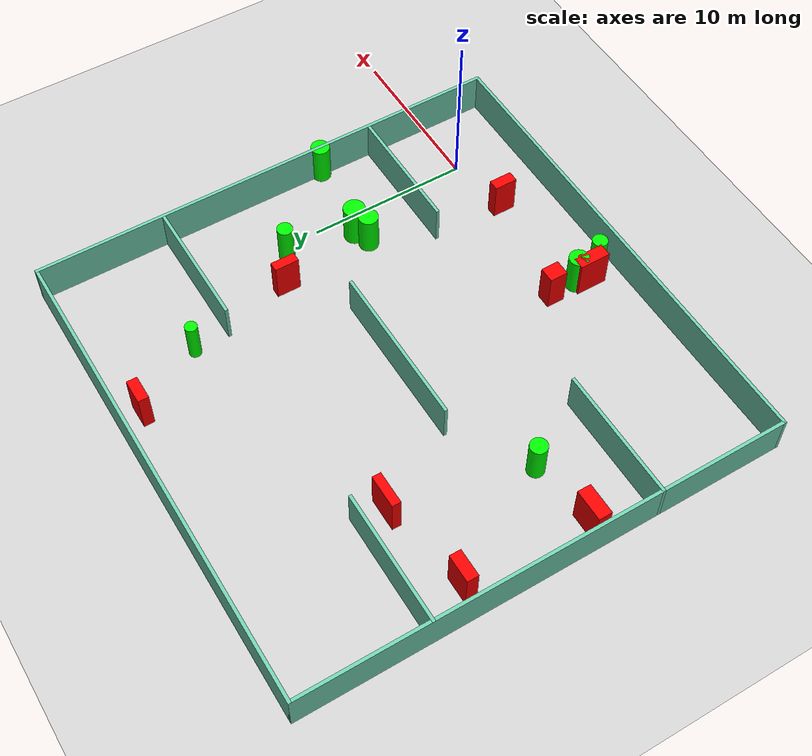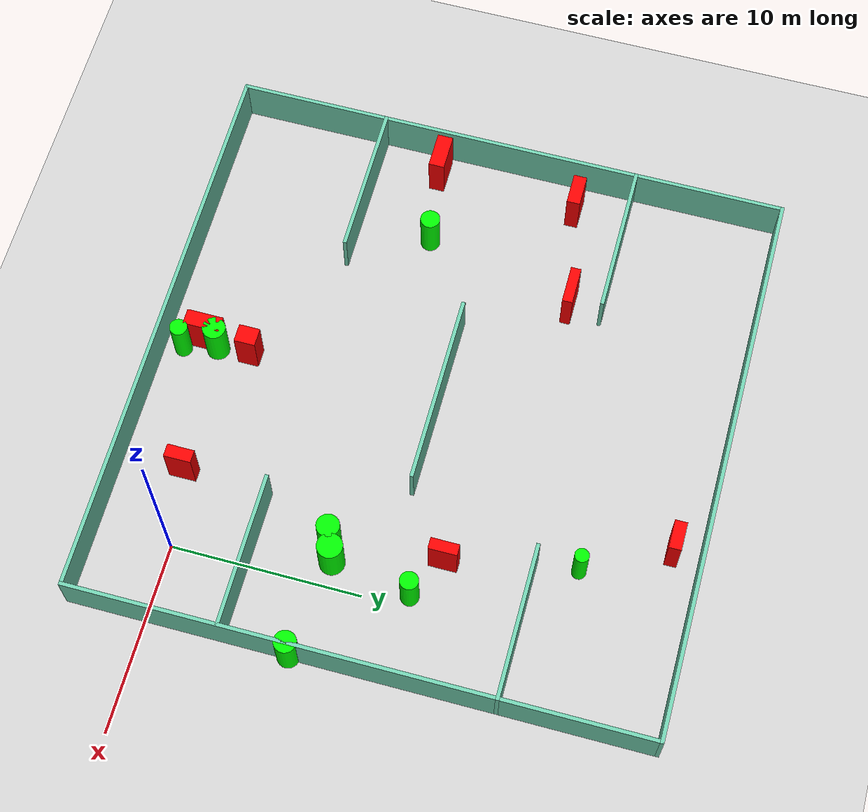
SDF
<sdf version="1.7">
 <world name="default">
  <light name="sun" type="directional">
   <pose>0 0 10 0 -0 0</pose>
   <diffuse>0.8 0.8 0.8 1</diffuse>
   <specular>0.2 0.2 0.2 1</specular>
   <attenuation>
    <range>1000</range>
    <constant>0.9</constant>
    <linear>0.01</linear>
    <quadratic>0.001</quadratic>
   </attenuation>
   <direction>-0.5 0.1 -0.9</direction>
   <spot><inner_angle>0</inner_angle><outer_angle>0</outer_angle><falloff>0</falloff></spot>
  </light>
  <model name="ground_plane">
   <static>1</static>
   <link name="link">
    <collision name="collision">
     <geometry><plane><normal>0 0 1</normal><size>100 100</size></plane></geometry>
     <surface>
      <contact><collide_bitmask>65535</collide_bitmask></contact>
      <friction><ode><mu>100</mu><mu2>50</mu2></ode></friction>
     </surface>
    </collision>
    <visual name="visual">
     <cast_shadows>0</cast_shadows>
     <geometry><plane><normal>0 0 1</normal><size>100 100</size></plane></geometry>
     <material>
      <script><uri>file://media/materials/scripts/gazebo.material</uri><name>Gazebo/Grey</name></script>
     </material>
    </visual>
   </link>
  </model>
  <gravity>0 0 -9.8</gravity>
  <magnetic_field>6e-06 2.3e-05 -4.2e-05</magnetic_field>
  <atmosphere type="adiabatic"/>
  <physics type="ode">
   <max_step_size>0.001</max_step_size>
   <real_time_factor>1</real_time_factor>
   <real_time_update_rate>1000</real_time_update_rate>
  </physics>
  <scene><ambient>0.4 0.4 0.4 1</ambient><background>0.7 0.7 0.7 1</background><shadows>1</shadows></scene>
  <spherical_coordinates>
   <surface_model>EARTH_WGS84</surface_model>
   <latitude_deg>0</latitude_deg>
   <longitude_deg>0</longitude_deg>
   <elevation>0</elevation>
   <heading_deg>0</heading_deg>
  </spherical_coordinates>
  <model name="my_base_walls">
   <link name="Wall_10">
    <collision name="Wall_10_Collision">
     <geometry><box><size>8.2 0.2 2.5</size></box></geometry>
     <pose>0 0 1.25 0 -0 0</pose>
    </collision>
    <visual name="Wall_10_Visual">
     <pose>0 0 1.25 0 -0 0</pose>
     <geometry><box><size>8.2 0.2 2.5</size></box></geometry>
     <material>
      <script><uri>file://media/materials/scripts/gazebo.material</uri><name>Gazebo/Grey</name></script>
      <ambient>0.435294 0.796078 0.67451 1</ambient>
     </material>
     <meta><layer>0</layer></meta>
    </visual>
    <pose>-11 -7 0 0 -0 0</pose>
   </link>
   <link name="Wall_12">
    <collision name="Wall_12_Collision">
     <geometry><box><size>8.2 0.2 2.5</size></box></geometry>
     <pose>0 0 1.25 0 -0 0</pose>
    </collision>
    <visual name="Wall_12_Visual">
     <pose>0 0 1.25 0 -0 0</pose>
     <geometry><box><size>8.2 0.2 2.5</size></box></geometry>
     <material>
      <script><uri>file://media/materials/scripts/gazebo.material</uri><name>Gazebo/Grey</name></script>
      <ambient>0.435294 0.796078 0.67451 1</ambient>
     </material>
     <meta><layer>0</layer></meta>
    </visual>
    <pose>-11 7 0 0 -0 0</pose>
   </link>
   <link name="Wall_14">
    <collision name="Wall_14_Collision">
     <geometry><box><size>8.2 0.2 2.5</size></box></geometry>
     <pose>0 0 1.25 0 -0 0</pose>
    </collision>
    <visual name="Wall_14_Visual">
     <pose>0 0 1.25 0 -0 0</pose>
     <geometry><box><size>8.2 0.2 2.5</size></box></geometry>
     <material>
      <script><uri>file://media/materials/scripts/gazebo.material</uri><name>Gazebo/Grey</name></script>
      <ambient>0.435294 0.796078 0.67451 1</ambient>
     </material>
     <meta><layer>0</layer></meta>
    </visual>
    <pose>11 7 0 0 -0 3.14159</pose>
   </link>
   <link name="Wall_16">
    <collision name="Wall_16_Collision">
     <geometry><box><size>10.2 0.2 2.5</size></box></geometry>
     <pose>0 0 1.25 0 -0 0</pose>
    </collision>
    <visual name="Wall_16_Visual">
     <pose>0 0 1.25 0 -0 0</pose>
     <geometry><box><size>10.2 0.2 2.5</size></box></geometry>
     <material>
      <script><uri>file://media/materials/scripts/gazebo.material</uri><name>Gazebo/Grey</name></script>
      <ambient>0.435294 0.796078 0.67451 1</ambient>
     </material>
     <meta><layer>0</layer></meta>
    </visual>
    <pose>0 0 0 0 -0 3.14159</pose>
   </link>
   <link name="Wall_2">
    <collision name="Wall_2_Collision">
     <geometry><box><size>30.2 0.2 2.5</size></box></geometry>
     <pose>0 0 1.25 0 -0 0</pose>
    </collision>
    <visual name="Wall_2_Visual">
     <pose>0 0 1.25 0 -0 0</pose>
     <geometry><box><size>30.2 0.2 2.5</size></box></geometry>
     <material>
      <script><uri>file://media/materials/scripts/gazebo.material</uri><name>Gazebo/Grey</name></script>
      <ambient>0.435294 0.796078 0.67451 1</ambient>
     </material>
     <meta><layer>0</layer></meta>
    </visual>
    <pose>0 -15 0 0 -0 3.14159</pose>
   </link>
   <link name="Wall_3">
    <collision name="Wall_3_Collision">
     <geometry><box><size>30.2 0.2 2.5</size></box></geometry>
     <pose>0 0 1.25 0 -0 0</pose>
    </collision>
    <visual name="Wall_3_Visual">
     <pose>0 0 1.25 0 -0 0</pose>
     <geometry><box><size>30.2 0.2 2.5</size></box></geometry>
     <material>
      <script><uri>file://media/materials/scripts/gazebo.material</uri><name>Gazebo/Grey</name></script>
      <ambient>0.435294 0.796078 0.67451 1</ambient>
     </material>
     <meta><layer>0</layer></meta>
    </visual>
    <pose>-15 0 0 0 -0 1.5708</pose>
   </link>
   <link name="Wall_4">
    <collision name="Wall_4_Collision">
     <geometry><box><size>30.2 0.2 2.5</size></box></geometry>
     <pose>0 0 1.25 0 -0 0</pose>
    </collision>
    <visual name="Wall_4_Visual">
     <pose>0 0 1.25 0 -0 0</pose>
     <geometry><box><size>30.2 0.2 2.5</size></box></geometry>
     <material>
      <script><uri>file://media/materials/scripts/gazebo.material</uri><name>Gazebo/Grey</name></script>
      <ambient>0.435294 0.796078 0.67451 1</ambient>
     </material>
     <meta><layer>0</layer></meta>
    </visual>
    <pose>0 15 0 0 -0 0</pose>
   </link>
   <link name="Wall_6">
    <collision name="Wall_6_Collision">
     <geometry><box><size>30.2 0.2 2.5</size></box></geometry>
     <pose>0 0 1.25 0 -0 0</pose>
    </collision>
    <visual name="Wall_6_Visual">
     <pose>0 0 1.25 0 -0 0</pose>
     <geometry><box><size>30.2 0.2 2.5</size></box></geometry>
     <material>
      <script><uri>file://media/materials/scripts/gazebo.material</uri><name>Gazebo/Grey</name></script>
      <ambient>0.435294 0.796078 0.67451 1</ambient>
     </material>
     <meta><layer>0</layer></meta>
    </visual>
    <pose>15 0 0 0 -0 1.5708</pose>
   </link>
   <link name="Wall_8">
    <collision name="Wall_8_Collision">
     <geometry><box><size>8.2 0.2 2.5</size></box></geometry>
     <pose>0 0 1.25 0 -0 0</pose>
    </collision>
    <visual name="Wall_8_Visual">
     <pose>0 0 1.25 0 -0 0</pose>
     <geometry><box><size>8.2 0.2 2.5</size></box></geometry>
     <material>
      <script><uri>file://media/materials/scripts/gazebo.material</uri><name>Gazebo/Grey</name></script>
      <ambient>0.435294 0.796078 0.67451 1</ambient>
     </material>
     <meta><layer>0</layer></meta>
    </visual>
    <pose>11 -7 0 0 -0 3.14159</pose>
   </link>
   <static>1</static>
   <pose>-11 11 0 0 -0 0</pose>
  </model>
  <model name="cylinder1">
   <static>1</static>
   <link name="link">
    <inertial>
     <mass>1</mass>
     <inertia><ixx>0.5</ixx><ixy>0</ixy><ixz>0</ixz><iyy>0.5</iyy><iyz>0</iyz><izz>1</izz></inertia>
    </inertial>
    <collision name="collision">
     <geometry><cylinder><radius>0.669465286573431</radius><length>2.5</length></cylinder></geometry>
    </collision>
    <visual name="visual">
     <geometry><cylinder><radius>0.669465286573431</radius><length>2.5</length></cylinder></geometry>
     <material>
      <ambient>0 1 0 1</ambient>
      <diffuse>0 1 0 1</diffuse>
      <specular>0.1 0.1 0.1 1</specular>
      <emissive>0 0 0 0</emissive>
     </material>
    </visual>
   </link>
   <pose>-1.3067908336446123 8.10168499075509 1.25 0 0 0</pose>
  </model>
  <model name="cylinder2">
   <static>1</static>
   <link name="link">
    <inertial>
     <mass>1</mass>
     <inertia><ixx>0.5</ixx><ixy>0</ixy><ixz>0</ixz><iyy>0.5</iyy><iyz>0</iyz><izz>1</izz></inertia>
    </inertial>
    <collision name="collision">
     <geometry><cylinder><radius>0.4675520741624093</radius><length>2.5</length></cylinder></geometry>
    </collision>
    <visual name="visual">
     <geometry><cylinder><radius>0.4675520741624093</radius><length>2.5</length></cylinder></geometry>
     <material>
      <ambient>0 1 0 1</ambient>
      <diffuse>0 1 0 1</diffuse>
      <specular>0.1 0.1 0.1 1</specular>
      <emissive>0 0 0 0</emissive>
     </material>
    </visual>
   </link>
   <pose>-10.817020588840283 -2.906690204983889 1.25 0 0 0</pose>
  </model>
  <model name="cylinder3">
   <static>1</static>
   <link name="link">
    <inertial>
     <mass>1</mass>
     <inertia><ixx>0.5</ixx><ixy>0</ixy><ixz>0</ixz><iyy>0.5</iyy><iyz>0</iyz><izz>1</izz></inertia>
    </inertial>
    <collision name="collision">
     <geometry><cylinder><radius>0.4840271327728783</radius><length>2.5</length></cylinder></geometry>
    </collision>
    <visual name="visual">
     <geometry><cylinder><radius>0.4840271327728783</radius><length>2.5</length></cylinder></geometry>
     <material>
      <ambient>0 1 0 1</ambient>
      <diffuse>0 1 0 1</diffuse>
      <specular>0.1 0.1 0.1 1</specular>
      <emissive>0 0 0 0</emissive>
     </material>
    </visual>
   </link>
   <pose>-0.5799006032450222 12.36094277454222 1.25 0 0 0</pose>
  </model>
  <model name="cylinder4">
   <static>1</static>
   <link name="link">
    <inertial>
     <mass>1</mass>
     <inertia><ixx>0.5</ixx><ixy>0</ixy><ixz>0</ixz><iyy>0.5</iyy><iyz>0</iyz><izz>1</izz></inertia>
    </inertial>
    <collision name="collision">
     <geometry><cylinder><radius>0.3726090077780566</radius><length>2.5</length></cylinder></geometry>
    </collision>
    <visual name="visual">
     <geometry><cylinder><radius>0.3726090077780566</radius><length>2.5</length></cylinder></geometry>
     <material>
      <ambient>0 1 0 1</ambient>
      <diffuse>0 1 0 1</diffuse>
      <specular>0.1 0.1 0.1 1</specular>
      <emissive>0 0 0 0</emissive>
     </material>
    </visual>
   </link>
   <pose>-4.058382619139547 20.20748042425034 1.25 0 0 0</pose>
  </model>
  <model name="cylinder5">
   <static>1</static>
   <link name="link">
    <inertial>
     <mass>1</mass>
     <inertia><ixx>0.5</ixx><ixy>0</ixy><ixz>0</ixz><iyy>0.5</iyy><iyz>0</iyz><izz>1</izz></inertia>
    </inertial>
    <collision name="collision">
     <geometry><cylinder><radius>0.5811250138476426</radius><length>2.5</length></cylinder></geometry>
    </collision>
    <visual name="visual">
     <geometry><cylinder><radius>0.5811250138476426</radius><length>2.5</length></cylinder></geometry>
     <material>
      <ambient>0 1 0 1</ambient>
      <diffuse>0 1 0 1</diffuse>
      <specular>0.1 0.1 0.1 1</specular>
      <emissive>0 0 0 0</emissive>
     </material>
    </visual>
   </link>
   <pose>3.967872224985225 7.424910341046445 1.25 0 0 0</pose>
  </model>
  <model name="cylinder6">
   <static>1</static>
   <link name="link">
    <inertial>
     <mass>1</mass>
     <inertia><ixx>0.5</ixx><ixy>0</ixy><ixz>0</ixz><iyy>0.5</iyy><iyz>0</iyz><izz>1</izz></inertia>
    </inertial>
    <collision name="collision">
     <geometry><cylinder><radius>0.6110303464079017</radius><length>2.5</length></cylinder></geometry>
    </collision>
    <visual name="visual">
     <geometry><cylinder><radius>0.6110303464079017</radius><length>2.5</length></cylinder></geometry>
     <material>
      <ambient>0 1 0 1</ambient>
      <diffuse>0 1 0 1</diffuse>
      <specular>0.1 0.1 0.1 1</specular>
      <emissive>0 0 0 0</emissive>
     </material>
    </visual>
   </link>
   <pose>-11.247097844592972 -1.1190011340784127 1.25 0 0 0</pose>
  </model>
  <model name="cylinder7">
   <static>1</static>
   <link name="link">
    <inertial>
     <mass>1</mass>
     <inertia><ixx>0.5</ixx><ixy>0</ixy><ixz>0</ixz><iyy>0.5</iyy><iyz>0</iyz><izz>1</izz></inertia>
    </inertial>
    <collision name="collision">
     <geometry><cylinder><radius>0.5249574710329677</radius><length>2.5</length></cylinder></geometry>
    </collision>
    <visual name="visual">
     <geometry><cylinder><radius>0.5249574710329677</radius><length>2.5</length></cylinder></geometry>
     <material>
      <ambient>0 1 0 1</ambient>
      <diffuse>0 1 0 1</diffuse>
      <specular>0.1 0.1 0.1 1</specular>
      <emissive>0 0 0 0</emissive>
     </material>
    </visual>
   </link>
   <pose>-20.4752105317798 8.002202204751654 1.25 0 0 0</pose>
  </model>
  <model name="cylinder8">
   <static>1</static>
   <link name="link">
    <inertial>
     <mass>1</mass>
     <inertia><ixx>0.5</ixx><ixy>0</ixy><ixz>0</ixz><iyy>0.5</iyy><iyz>0</iyz><izz>1</izz></inertia>
    </inertial>
    <collision name="collision">
     <geometry><cylinder><radius>0.6069907657638682</radius><length>2.5</length></cylinder></geometry>
    </collision>
    <visual name="visual">
     <geometry><cylinder><radius>0.6069907657638682</radius><length>2.5</length></cylinder></geometry>
     <material>
      <ambient>0 1 0 1</ambient>
      <diffuse>0 1 0 1</diffuse>
      <specular>0.1 0.1 0.1 1</specular>
      <emissive>0 0 0 0</emissive>
     </material>
    </visual>
   </link>
   <pose>-2.3051593420732743 7.7158928697017615 1.25 0 0 0</pose>
  </model>
  <model name="box1">
   <static>1</static>
   <link name="link">
    <inertial>
     <mass>1</mass>
     <inertia><ixx>0.083</ixx><ixy>0</ixy><ixz>0</ixz><iyy>0.083</iyy><iyz>0</iyz><izz>0.083</izz></inertia>
    </inertial>
    <collision name="collision">
     <geometry><box><size>0.6776977123117097 1.430777269292888 2.5</size></box></geometry>
    </collision>
    <visual name="visual">
     <geometry><box><size>0.6776977123117097 1.430777269292888 2.5</size></box></geometry>
     <material>
      <ambient>1 0 0 1</ambient>
      <diffuse>1 0 0 1</diffuse>
      <specular>0.1 0.1 0.1 1</specular>
      <emissive>0 0 0 0</emissive>
     </material>
    </visual>
    <sensor name="my_contact" type="contact">
     <contact><collision>box_collision</collision><topic>__default_topic__</topic></contact>
    </sensor>
   </link>
   <pose>-4.063492294269512 -0.6224081675084863 1.25 0 0 0</pose>
  </model>
  <model name="box2">
   <static>1</static>
   <link name="link">
    <inertial>
     <mass>1</mass>
     <inertia><ixx>0.083</ixx><ixy>0</ixy><ixz>0</ixz><iyy>0.083</iyy><iyz>0</iyz><izz>0.083</izz></inertia>
    </inertial>
    <collision name="collision">
     <geometry><box><size>1.696998041439839 0.7125349747825187 2.5</size></box></geometry>
    </collision>
    <visual name="visual">
     <geometry><box><size>1.696998041439839 0.7125349747825187 2.5</size></box></geometry>
     <material>
      <ambient>1 0 0 1</ambient>
      <diffuse>1 0 0 1</diffuse>
      <specular>0.1 0.1 0.1 1</specular>
      <emissive>0 0 0 0</emissive>
     </material>
    </visual>
    <sensor name="my_contact" type="contact">
     <contact><collision>box_collision</collision><topic>__default_topic__</topic></contact>
    </sensor>
   </link>
   <pose>-24.3001001878141 15.12888359915856 1.25 0 0 0</pose>
  </model>
  <model name="box3">
   <static>1</static>
   <link name="link">
    <inertial>
     <mass>1</mass>
     <inertia><ixx>0.083</ixx><ixy>0</ixy><ixz>0</ixz><iyy>0.083</iyy><iyz>0</iyz><izz>0.083</izz></inertia>
    </inertial>
    <collision name="collision">
     <geometry><box><size>2.047156017756992 0.54677977348641 2.5</size></box></geometry>
    </collision>
    <visual name="visual">
     <geometry><box><size>2.047156017756992 0.54677977348641 2.5</size></box></geometry>
     <material>
      <ambient>1 0 0 1</ambient>
      <diffuse>1 0 0 1</diffuse>
      <specular>0.1 0.1 0.1 1</specular>
      <emissive>0 0 0 0</emissive>
     </material>
    </visual>
    <sensor name="my_contact" type="contact">
     <contact><collision>box_collision</collision><topic>__default_topic__</topic></contact>
    </sensor>
   </link>
   <pose>-18.57680637164743 16.21320729251326 1.25 0 0 0</pose>
  </model>
  <model name="box4">
   <static>1</static>
   <link name="link">
    <inertial>
     <mass>1</mass>
     <inertia><ixx>0.083</ixx><ixy>0</ixy><ixz>0</ixz><iyy>0.083</iyy><iyz>0</iyz><izz>0.083</izz></inertia>
    </inertial>
    <collision name="collision">
     <geometry><box><size>1.5123665547645566 0.649035267577565 2.5</size></box></geometry>
    </collision>
    <visual name="visual">
     <geometry><box><size>1.5123665547645566 0.649035267577565 2.5</size></box></geometry>
     <material>
      <ambient>1 0 0 1</ambient>
      <diffuse>1 0 0 1</diffuse>
      <specular>0.1 0.1 0.1 1</specular>
      <emissive>0 0 0 0</emissive>
     </material>
    </visual>
    <sensor name="my_contact" type="contact">
     <contact><collision>box_collision</collision><topic>__default_topic__</topic></contact>
    </sensor>
   </link>
   <pose>-6.340435305298749 24.547943068569076 1.25 0 0 0</pose>
  </model>
  <model name="box5">
   <static>1</static>
   <link name="link">
    <inertial>
     <mass>1</mass>
     <inertia><ixx>0.083</ixx><ixy>0</ixy><ixz>0</ixz><iyy>0.083</iyy><iyz>0</iyz><izz>0.083</izz></inertia>
    </inertial>
    <collision name="collision">
     <geometry><box><size>0.8339370985062908 1.950177576695187 2.5</size></box></geometry>
    </collision>
    <visual name="visual">
     <geometry><box><size>0.8339370985062908 1.950177576695187 2.5</size></box></geometry>
     <material>
      <ambient>1 0 0 1</ambient>
      <diffuse>1 0 0 1</diffuse>
      <specular>0.1 0.1 0.1 1</specular>
      <emissive>0 0 0 0</emissive>
     </material>
    </visual>
    <sensor name="my_contact" type="contact">
     <contact><collision>box_collision</collision><topic>__default_topic__</topic></contact>
    </sensor>
   </link>
   <pose>-11.519433166713144 -1.7906683745630754 1.25 0 0 0</pose>
  </model>
  <model name="box6">
   <static>1</static>
   <link name="link">
    <inertial>
     <mass>1</mass>
     <inertia><ixx>0.083</ixx><ixy>0</ixy><ixz>0</ixz><iyy>0.083</iyy><iyz>0</iyz><izz>0.083</izz></inertia>
    </inertial>
    <collision name="collision">
     <geometry><box><size>0.5972239858631021 1.5015262634019437 2.5</size></box></geometry>
    </collision>
    <visual name="visual">
     <geometry><box><size>0.5972239858631021 1.5015262634019437 2.5</size></box></geometry>
     <material>
      <ambient>1 0 0 1</ambient>
      <diffuse>1 0 0 1</diffuse>
      <specular>0.1 0.1 0.1 1</specular>
      <emissive>0 0 0 0</emissive>
     </material>
    </visual>
    <sensor name="my_contact" type="contact">
     <contact><collision>box_collision</collision><topic>__default_topic__</topic></contact>
    </sensor>
   </link>
   <pose>-2.733326670065729 13.54272934852327 1.25 0 0 0</pose>
  </model>
  <model name="box7">
   <static>1</static>
   <link name="link">
    <inertial>
     <mass>1</mass>
     <inertia><ixx>0.083</ixx><ixy>0</ixy><ixz>0</ixz><iyy>0.083</iyy><iyz>0</iyz><izz>0.083</izz></inertia>
    </inertial>
    <collision name="collision">
     <geometry><box><size>1.929516074937728 0.8381757209283416 2.5</size></box></geometry>
    </collision>
    <visual name="visual">
     <geometry><box><size>1.929516074937728 0.8381757209283416 2.5</size></box></geometry>
     <material>
      <ambient>1 0 0 1</ambient>
      <diffuse>1 0 0 1</diffuse>
      <specular>0.1 0.1 0.1 1</specular>
      <emissive>0 0 0 0</emissive>
     </material>
    </visual>
    <sensor name="my_contact" type="contact">
     <contact><collision>box_collision</collision><topic>__default_topic__</topic></contact>
    </sensor>
   </link>
   <pose>-24.736214406894153 7.442229600871231 1.25 0 0 0</pose>
  </model>
  <model name="box8">
   <static>1</static>
   <link name="link">
    <inertial>
     <mass>1</mass>
     <inertia><ixx>0.083</ixx><ixy>0</ixy><ixz>0</ixz><iyy>0.083</iyy><iyz>0</iyz><izz>0.083</izz></inertia>
    </inertial>
    <collision name="collision">
     <geometry><box><size>0.966945943835683 1.1194439158548914 2.5</size></box></geometry>
    </collision>
    <visual name="visual">
     <geometry><box><size>0.966945943835683 1.1194439158548914 2.5</size></box></geometry>
     <material>
      <ambient>1 0 0 1</ambient>
      <diffuse>1 0 0 1</diffuse>
      <specular>0.1 0.1 0.1 1</specular>
      <emissive>0 0 0 0</emissive>
     </material>
    </visual>
    <sensor name="my_contact" type="contact">
     <contact><collision>box_collision</collision><topic>__default_topic__</topic></contact>
    </sensor>
   </link>
   <pose>-11.309812404548683 0.6655657068698626 1.25 0 0 0</pose>
  </model>
 </world>
</sdf>
